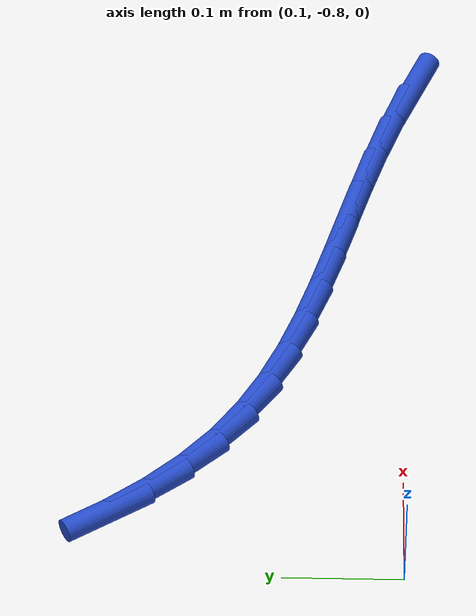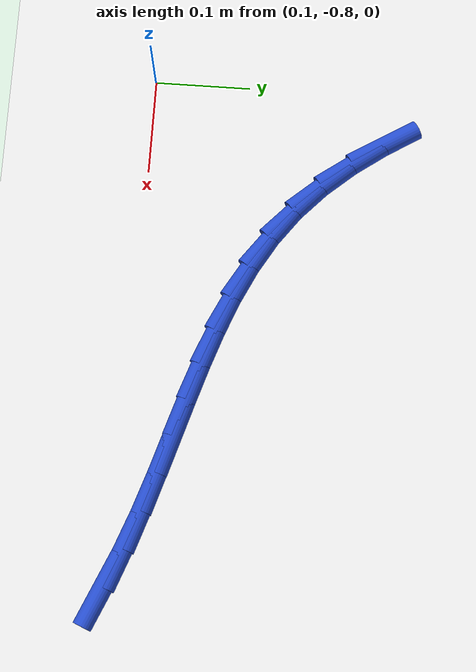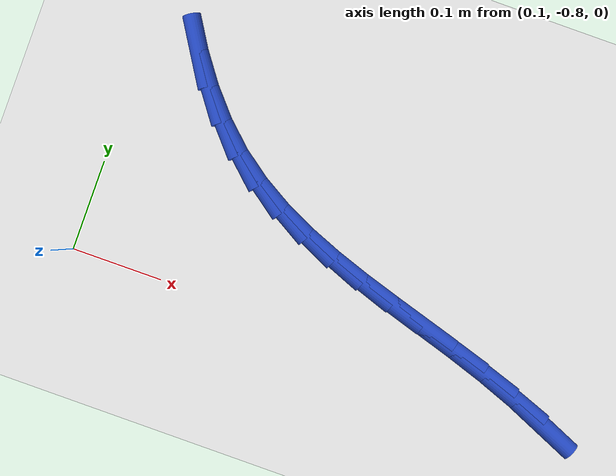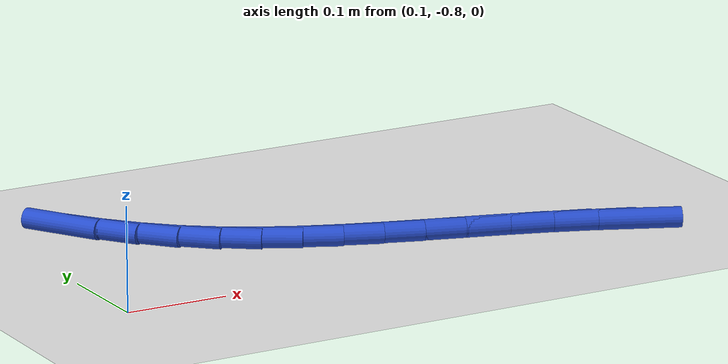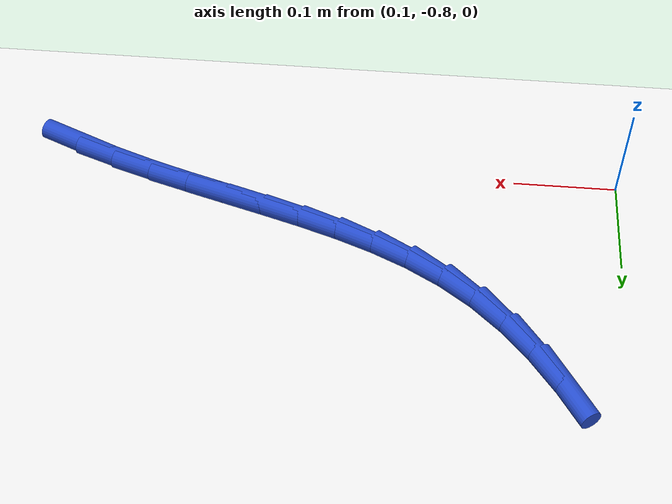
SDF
<sdf version="1.6">
 <world name="default">
  <model name="ground_plane">
   <static>1</static>
   <link name="link">
    <collision name="collision">
     <geometry><plane><normal>0 0 1</normal><size>100 100</size></plane></geometry>
     <surface><friction><ode><mu>100</mu><mu2>50</mu2></ode></friction></surface>
    </collision>
    <visual name="visual">
     <cast_shadows>0</cast_shadows>
     <geometry><plane><normal>0 0 1</normal><size>100 100</size></plane></geometry>
     <material>
      <script><uri>file://media/materials/scripts/gazebo.material</uri><name>Gazebo/WhiteGlow</name></script>
     </material>
    </visual>
   </link>
  </model>
  <model name="line">
   <link name="link_152">
    <pose>0.6386026133513375 -0.8091539226624763 0.01 0 1.57 -0.41016062563919853</pose>
    <collision name="collision">
     <geometry><cylinder><radius>0.01</radius><length>0.08</length></cylinder></geometry>
    </collision>
    <visual name="visual">
     <material>
      <script><name>Gazebo/Blue</name><uri>file://media/materials/scripts/gazebo.material</uri></script>
     </material>
     <geometry><cylinder><radius>0.01</radius><length>0.08</length></cylinder></geometry>
    </visual>
   </link>
   <link name="link_153">
    <pose>0.5992353479802441 -0.7920361622594532 0.01 0 1.57 -0.3579169276315981</pose>
    <collision name="collision">
     <geometry><cylinder><radius>0.01</radius><length>0.08</length></cylinder></geometry>
    </collision>
    <visual name="visual">
     <material>
      <script><name>Gazebo/Blue</name><uri>file://media/materials/scripts/gazebo.material</uri></script>
     </material>
     <geometry><cylinder><radius>0.01</radius><length>0.08</length></cylinder></geometry>
    </visual>
   </link>
   <link name="link_154">
    <pose>0.5596894138623217 -0.7772449344879269 0.01 0 1.57 -0.32031898450492424</pose>
    <collision name="collision">
     <geometry><cylinder><radius>0.01</radius><length>0.08</length></cylinder></geometry>
    </collision>
    <visual name="visual">
     <material>
      <script><name>Gazebo/Blue</name><uri>file://media/materials/scripts/gazebo.material</uri></script>
     </material>
     <geometry><cylinder><radius>0.01</radius><length>0.08</length></cylinder></geometry>
    </visual>
   </link>
   <link name="link_155">
    <pose>0.5202078288898592 -0.7641471769734128 0.01 0 1.57 -0.2981198122510604</pose>
    <collision name="collision">
     <geometry><cylinder><radius>0.01</radius><length>0.08</length></cylinder></geometry>
    </collision>
    <visual name="visual">
     <material>
      <script><name>Gazebo/Blue</name><uri>file://media/materials/scripts/gazebo.material</uri></script>
     </material>
     <geometry><cylinder><radius>0.01</radius><length>0.08</length></cylinder></geometry>
    </visual>
   </link>
   <link name="link_156">
    <pose>0.4810336109551431 -0.7521098273414252 0.01 0 1.57 -0.2919995619575287</pose>
    <collision name="collision">
     <geometry><cylinder><radius>0.01</radius><length>0.08</length></cylinder></geometry>
    </collision>
    <visual name="visual">
     <material>
      <script><name>Gazebo/Blue</name><uri>file://media/materials/scripts/gazebo.material</uri></script>
     </material>
     <geometry><cylinder><radius>0.01</radius><length>0.08</length></cylinder></geometry>
    </visual>
   </link>
   <link name="link_157">
    <pose>0.44240977795046066 -0.7404998232174782 0.01 0 1.57 -0.30273342302356987</pose>
    <collision name="collision">
     <geometry><cylinder><radius>0.01</radius><length>0.08</length></cylinder></geometry>
    </collision>
    <visual name="visual">
     <material>
      <script><name>Gazebo/Blue</name><uri>file://media/materials/scripts/gazebo.material</uri></script>
     </material>
     <geometry><cylinder><radius>0.01</radius><length>0.08</length></cylinder></geometry>
    </visual>
   </link>
   <link name="link_158">
    <pose>0.40457934776809934 -0.7286841022270865 0.01 0 1.57 -0.33125550402513587</pose>
    <collision name="collision">
     <geometry><cylinder><radius>0.01</radius><length>0.08</length></cylinder></geometry>
    </collision>
    <visual name="visual">
     <material>
      <script><name>Gazebo/Blue</name><uri>file://media/materials/scripts/gazebo.material</uri></script>
     </material>
     <geometry><cylinder><radius>0.01</radius><length>0.08</length></cylinder></geometry>
    </visual>
   </link>
   <link name="link_159">
    <pose>0.3677853383003457 -0.7160296019957642 0.01 0 1.57 -0.37857546028854877</pose>
    <collision name="collision">
     <geometry><cylinder><radius>0.01</radius><length>0.08</length></cylinder></geometry>
    </collision>
    <visual name="visual">
     <material>
      <script><name>Gazebo/Blue</name><uri>file://media/materials/scripts/gazebo.material</uri></script>
     </material>
     <geometry><cylinder><radius>0.01</radius><length>0.08</length></cylinder></geometry>
    </visual>
   </link>
   <link name="link_160">
    <pose>0.3322707674394886 -0.7019032601490264 0.01 0 1.57 -0.4454864038162329</pose>
    <collision name="collision">
     <geometry><cylinder><radius>0.01</radius><length>0.08</length></cylinder></geometry>
    </collision>
    <visual name="visual">
     <material>
      <script><name>Gazebo/Blue</name><uri>file://media/materials/scripts/gazebo.material</uri></script>
     </material>
     <geometry><cylinder><radius>0.01</radius><length>0.08</length></cylinder></geometry>
    </visual>
   </link>
   <link name="link_161">
    <pose>0.2982786530778146 -0.6856720143123873 0.01 0 1.57 -0.5320090772707835</pose>
    <collision name="collision">
     <geometry><cylinder><radius>0.01</radius><length>0.08</length></cylinder></geometry>
    </collision>
    <visual name="visual">
     <material>
      <script><name>Gazebo/Blue</name><uri>file://media/materials/scripts/gazebo.material</uri></script>
     </material>
     <geometry><cylinder><radius>0.01</radius><length>0.08</length></cylinder></geometry>
    </visual>
   </link>
   <link name="link_162">
    <pose>0.26605201310761106 -0.6667028021113615 0.01 0 1.57 -0.6366171018924095</pose>
    <collision name="collision">
     <geometry><cylinder><radius>0.01</radius><length>0.08</length></cylinder></geometry>
    </collision>
    <visual name="visual">
     <material>
      <script><name>Gazebo/Blue</name><uri>file://media/materials/scripts/gazebo.material</uri></script>
     </material>
     <geometry><cylinder><radius>0.01</radius><length>0.08</length></cylinder></geometry>
    </visual>
   </link>
   <link name="link_163">
    <pose>0.23583386542116522 -0.6443625611714634 0.01 0 1.57 -0.7517539971815246</pose>
    <collision name="collision">
     <geometry><cylinder><radius>0.01</radius><length>0.08</length></cylinder></geometry>
    </collision>
    <visual name="visual">
     <material>
      <script><name>Gazebo/Blue</name><uri>file://media/materials/scripts/gazebo.material</uri></script>
     </material>
     <geometry><cylinder><radius>0.01</radius><length>0.08</length></cylinder></geometry>
    </visual>
   </link>
   <link name="link_164">
    <pose>0.2078213065267407 -0.6181742342416211 0.01 0 1.57 -0.8558462304261525</pose>
    <collision name="collision">
     <geometry><cylinder><radius>0.01</radius><length>0.08</length></cylinder></geometry>
    </collision>
    <visual name="visual">
     <material>
      <script><name>Gazebo/Blue</name><uri>file://media/materials/scripts/gazebo.material</uri></script>
     </material>
     <geometry><cylinder><radius>0.01</radius><length>0.08</length></cylinder></geometry>
    </visual>
   </link>
   <link name="link_165">
    <pose>0.1819883374177369 -0.5884186690004456 0.01 0 1.57 -0.9443228265458057</pose>
    <collision name="collision">
     <geometry><cylinder><radius>0.01</radius><length>0.08</length></cylinder></geometry>
    </collision>
    <visual name="visual">
     <material>
      <script><name>Gazebo/Blue</name><uri>file://media/materials/scripts/gazebo.material</uri></script>
     </material>
     <geometry><cylinder><radius>0.01</radius><length>0.08</length></cylinder></geometry>
    </visual>
   </link>
   <link name="link_166">
    <pose>0.15824130616877094 -0.555606545091952 0.01 0 1.57 -1.0192229700621513</pose>
    <collision name="collision">
     <geometry><cylinder><radius>0.01</radius><length>0.08</length></cylinder></geometry>
    </collision>
    <visual name="visual">
     <material>
      <script><name>Gazebo/Blue</name><uri>file://media/materials/scripts/gazebo.material</uri></script>
     </material>
     <geometry><cylinder><radius>0.01</radius><length>0.08</length></cylinder></geometry>
    </visual>
   </link>
  </model>
 </world>
</sdf>
